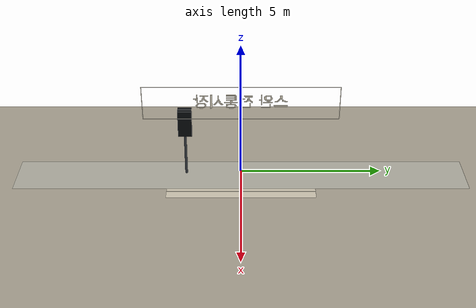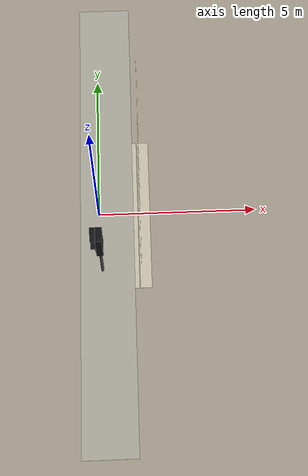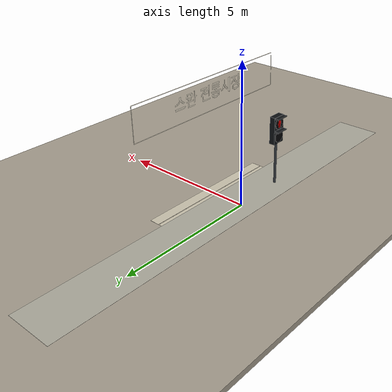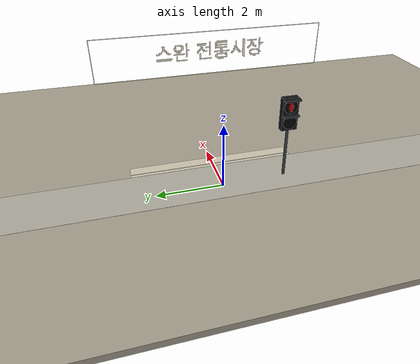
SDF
<sdf version="1.10">
 <world name="swan_town">
  <model name="ground_plane">
   <pose>-14 30 -0.025 0 0 0</pose>
   <static>true</static>
   <link name="link">
    <collision name="collision">
     <geometry><plane><normal>0 0 1</normal><size>100 100</size></plane></geometry>
    </collision>
    <visual name="visual">
     <geometry><plane><normal>0 0 1</normal><size>100 100</size></plane></geometry>
     <material><ambient>0.3 0.5 0.2 1</ambient><diffuse>0.3 0.5 0.2 1</diffuse></material>
    </visual>
   </link>
  </model>
  <model name="ground">
   <static>true</static>
   <pose>15 0 -0.1 0 0 0</pose>
   <link name="body">
    <collision name="box_collision"><geometry><box><size>46 24 0.2</size></box></geometry></collision>
    <visual name="box_visual">
     <geometry><box><size>46 24 0.2</size></box></geometry>
     <material><ambient>0.64 0.61 0.55 1</ambient><diffuse>0.64 0.61 0.55 1</diffuse></material>
    </visual>
   </link>
  </model>
  <model name="market_paving_4">
   <static>true</static>
   <pose>0.25 0 0.002 0 0 0</pose>
   <link name="body">
    <visual name="box_visual">
     <geometry><box><size>0.75 5.2 0.004</size></box></geometry>
     <material><ambient>0.79 0.76 0.68 1</ambient><diffuse>0.79 0.76 0.68 1</diffuse></material>
    </visual>
   </link>
  </model>
  <model name="paving_joint_4">
   <static>true</static>
   <pose>0.25 0 0.0045 0 0 0</pose>
   <link name="body">
    <visual name="box_visual">
     <geometry><box><size>0.025 5.2 0.001</size></box></geometry>
     <material><ambient>0.67 0.64 0.57 1</ambient><diffuse>0.67 0.64 0.57 1</diffuse></material>
    </visual>
   </link>
  </model>
  <model name="market_paving_5">
   <static>true</static>
   <pose>0.75 0 0.002 0 0 0</pose>
   <link name="body">
    <visual name="box_visual">
     <geometry><box><size>0.75 5.2 0.004</size></box></geometry>
     <material><ambient>0.79 0.76 0.68 1</ambient><diffuse>0.79 0.76 0.68 1</diffuse></material>
    </visual>
   </link>
  </model>
  <model name="market_paving_6">
   <static>true</static>
   <pose>1.25 0 0.002 0 0 0</pose>
   <link name="body">
    <visual name="box_visual">
     <geometry><box><size>0.75 5.2 0.004</size></box></geometry>
     <material><ambient>0.79 0.76 0.68 1</ambient><diffuse>0.79 0.76 0.68 1</diffuse></material>
    </visual>
   </link>
  </model>
  <model name="paving_joint_6">
   <static>true</static>
   <pose>1.25 0 0.0045 0 0 0</pose>
   <link name="body">
    <visual name="box_visual">
     <geometry><box><size>0.025 5.2 0.001</size></box></geometry>
     <material><ambient>0.67 0.64 0.57 1</ambient><diffuse>0.67 0.64 0.57 1</diffuse></material>
    </visual>
   </link>
  </model>
  <model name="entrance_sidewalk_market">
   <static>true</static>
   <pose>0.25 0 0.014 0 0 0</pose>
   <link name="body">
    <visual name="box_visual">
     <geometry><box><size>1.7 16 0.004</size></box></geometry>
     <material><ambient>0.67 0.66 0.61 1</ambient><diffuse>0.67 0.66 0.61 1</diffuse></material>
    </visual>
   </link>
  </model>
  <model name="ped_signal_east_housing">
   <static>true</static>
   <pose>0.1 -1.95 0 0 0 -1.5708</pose>
   <link name="body">
    <collision name="pole_collision">
     <pose>0 0 1.025 0 0 0</pose>
     <geometry><cylinder><radius>0.045</radius><length>2.05</length></cylinder></geometry>
    </collision>
    <visual name="pole_visual">
     <pose>0 0 1.025 0 0 0</pose>
     <geometry><cylinder><radius>0.045</radius><length>2.05</length></cylinder></geometry>
     <material><ambient>0.23 0.25 0.27 1</ambient><diffuse>0.23 0.25 0.27 1</diffuse></material>
    </visual>
    <collision name="housing_collision">
     <pose>0 0 2.08 0 0 0</pose>
     <geometry><box><size>0.48 0.2 0.99</size></box></geometry>
    </collision>
    <visual name="housing_visual">
     <pose>0 0 2.08 0 0 0</pose>
     <geometry><box><size>0.48 0.2 0.99</size></box></geometry>
     <material><ambient>0.055 0.065 0.075 1</ambient><diffuse>0.055 0.065 0.075 1</diffuse></material>
    </visual>
    <visual name="red_lens_visual">
     <pose>0 -0.113 2.32 1.5708 0 0</pose>
     <geometry><cylinder><radius>0.205</radius><length>0.022</length></cylinder></geometry>
     <material><ambient>0.013 0.018 0.022 1</ambient><diffuse>0.013 0.018 0.022 1</diffuse></material>
    </visual>
    <visual name="red_hood_visual">
     <pose>0 -0.13 2.545 0 0 0</pose>
     <geometry><box><size>0.47 0.25 0.04</size></box></geometry>
     <material><ambient>0.07 0.08 0.09 1</ambient><diffuse>0.07 0.08 0.09 1</diffuse></material>
    </visual>
    <visual name="green_lens_visual">
     <pose>0 -0.113 1.84 1.5708 0 0</pose>
     <geometry><cylinder><radius>0.205</radius><length>0.022</length></cylinder></geometry>
     <material><ambient>0.013 0.018 0.022 1</ambient><diffuse>0.013 0.018 0.022 1</diffuse></material>
    </visual>
    <visual name="green_hood_visual">
     <pose>0 -0.13 2.065 0 0 0</pose>
     <geometry><box><size>0.47 0.25 0.04</size></box></geometry>
     <material><ambient>0.07 0.08 0.09 1</ambient><diffuse>0.07 0.08 0.09 1</diffuse></material>
    </visual>
   </link>
  </model>
  <model name="ped_signal_east_red">
   <static>true</static>
   <pose>0.1 -1.95 0 0 0 -1.5708</pose>
   <link name="body">
    <visual name="head_visual">
     <pose>-0.012 -0.132 2.457 1.5708 0 0</pose>
     <geometry><cylinder><radius>0.035</radius><length>0.01</length></cylinder></geometry>
     <material>
      <ambient>1 0.025 0.015 1</ambient>
      <diffuse>1 0.025 0.015 1</diffuse>
      <emissive>1 0.025 0.015 1</emissive>
     </material>
     <cast_shadows>false</cast_shadows>
    </visual>
    <visual name="stroke_0_visual">
     <pose>0 -0.132 2.36 0 3.1416 0</pose>
     <geometry><box><size>0.064 0.01 0.122</size></box></geometry>
     <material>
      <ambient>1 0.025 0.015 1</ambient>
      <diffuse>1 0.025 0.015 1</diffuse>
      <emissive>1 0.025 0.015 1</emissive>
     </material>
     <cast_shadows>false</cast_shadows>
    </visual>
    <visual name="stroke_1_visual">
     <pose>-0.056 -0.132 2.338 0 -2.9551 0</pose>
     <geometry><box><size>0.026 0.01 0.11987</size></box></geometry>
     <material>
      <ambient>1 0.025 0.015 1</ambient>
      <diffuse>1 0.025 0.015 1</diffuse>
      <emissive>1 0.025 0.015 1</emissive>
     </material>
     <cast_shadows>false</cast_shadows>
    </visual>
    <visual name="stroke_2_visual">
     <pose>0.056 -0.132 2.338 0 2.9551 0</pose>
     <geometry><box><size>0.026 0.01 0.11987</size></box></geometry>
     <material>
      <ambient>1 0.025 0.015 1</ambient>
      <diffuse>1 0.025 0.015 1</diffuse>
      <emissive>1 0.025 0.015 1</emissive>
     </material>
     <cast_shadows>false</cast_shadows>
    </visual>
    <visual name="stroke_3_visual">
     <pose>-0.0255 -0.132 2.2425 0 -3.075 0</pose>
     <geometry><box><size>0.032 0.01 0.1473</size></box></geometry>
     <material>
      <ambient>1 0.025 0.015 1</ambient>
      <diffuse>1 0.025 0.015 1</diffuse>
      <emissive>1 0.025 0.015 1</emissive>
     </material>
     <cast_shadows>false</cast_shadows>
    </visual>
    <visual name="stroke_4_visual">
     <pose>0.0255 -0.132 2.2425 0 3.075 0</pose>
     <geometry><box><size>0.032 0.01 0.1473</size></box></geometry>
     <material>
      <ambient>1 0.025 0.015 1</ambient>
      <diffuse>1 0.025 0.015 1</diffuse>
      <emissive>1 0.025 0.015 1</emissive>
     </material>
     <cast_shadows>false</cast_shadows>
    </visual>
   </link>
  </model>
  <model name="ped_signal_east_green">
   <static>true</static>
   <pose>0.1 -1.95 -5 0 0 -1.5708</pose>
   <link name="body">
    <visual name="head_visual">
     <pose>0.025 -0.132 1.977 1.5708 0 0</pose>
     <geometry><cylinder><radius>0.035</radius><length>0.01</length></cylinder></geometry>
     <material>
      <ambient>0.025 1 0.18 1</ambient>
      <diffuse>0.025 1 0.18 1</diffuse>
      <emissive>0.025 1 0.18 1</emissive>
     </material>
     <cast_shadows>false</cast_shadows>
    </visual>
    <visual name="stroke_0_visual">
     <pose>-0.004 -0.132 1.876 0 -2.8633 0</pose>
     <geometry><box><size>0.054 0.01 0.12848</size></box></geometry>
     <material>
      <ambient>0.025 1 0.18 1</ambient>
      <diffuse>0.025 1 0.18 1</diffuse>
      <emissive>0.025 1 0.18 1</emissive>
     </material>
     <cast_shadows>false</cast_shadows>
    </visual>
    <visual name="stroke_1_visual">
     <pose>-0.032 -0.132 1.883 0 -2.234 0</pose>
     <geometry><box><size>0.026 0.01 0.093216</size></box></geometry>
     <material>
      <ambient>0.025 1 0.18 1</ambient>
      <diffuse>0.025 1 0.18 1</diffuse>
      <emissive>0.025 1 0.18 1</emissive>
     </material>
     <cast_shadows>false</cast_shadows>
    </visual>
    <visual name="stroke_2_visual">
     <pose>-0.088 -0.132 1.8665 0 -1.2304 0</pose>
     <geometry><box><size>0.026 0.01 0.062922</size></box></geometry>
     <material>
      <ambient>0.025 1 0.18 1</ambient>
      <diffuse>0.025 1 0.18 1</diffuse>
      <emissive>0.025 1 0.18 1</emissive>
     </material>
     <cast_shadows>false</cast_shadows>
    </visual>
    <visual name="stroke_3_visual">
     <pose>0.0475 -0.132 1.872 0 2.3652 0</pose>
     <geometry><box><size>0.026 0.01 0.090492</size></box></geometry>
     <material>
      <ambient>0.025 1 0.18 1</ambient>
      <diffuse>0.025 1 0.18 1</diffuse>
      <emissive>0.025 1 0.18 1</emissive>
     </material>
     <cast_shadows>false</cast_shadows>
    </visual>
    <visual name="stroke_4_visual">
     <pose>0.097 -0.132 1.8485 0 1.369 0</pose>
     <geometry><box><size>0.026 0.01 0.056911</size></box></geometry>
     <material>
      <ambient>0.025 1 0.18 1</ambient>
      <diffuse>0.025 1 0.18 1</diffuse>
      <emissive>0.025 1 0.18 1</emissive>
     </material>
     <cast_shadows>false</cast_shadows>
    </visual>
    <visual name="stroke_5_visual">
     <pose>-0.052 -0.132 1.76 0 -2.6651 0</pose>
     <geometry><box><size>0.031 0.01 0.15154</size></box></geometry>
     <material>
      <ambient>0.025 1 0.18 1</ambient>
      <diffuse>0.025 1 0.18 1</diffuse>
      <emissive>0.025 1 0.18 1</emissive>
     </material>
     <cast_shadows>false</cast_shadows>
    </visual>
    <visual name="stroke_6_visual">
     <pose>0.0195 -0.132 1.7905 0 2.1749 0</pose>
     <geometry><box><size>0.031 0.01 0.098267</size></box></geometry>
     <material>
      <ambient>0.025 1 0.18 1</ambient>
      <diffuse>0.025 1 0.18 1</diffuse>
      <emissive>0.025 1 0.18 1</emissive>
     </material>
     <cast_shadows>false</cast_shadows>
    </visual>
    <visual name="stroke_7_visual">
     <pose>0.0705 -0.132 1.7295 0 2.74 0</pose>
     <geometry><box><size>0.031 0.01 0.09131</size></box></geometry>
     <material>
      <ambient>0.025 1 0.18 1</ambient>
      <diffuse>0.025 1 0.18 1</diffuse>
      <emissive>0.025 1 0.18 1</emissive>
     </material>
     <cast_shadows>false</cast_shadows>
    </visual>
   </link>
  </model>
  <model name="sign_entrance">
   <static>true</static>
   <pose>1.365 0 3.6 0 0 -1.5708</pose>
   <link name="body">
    <visual name="top_visual">
     <pose>0 -0.003 0.58781 0 0 0</pose>
     <geometry><box><size>6.4416 0.003 0.0198</size></box></geometry>
     <material><ambient>1 0.961 0.875 1</ambient><diffuse>1 0.961 0.875 1</diffuse></material>
    </visual>
    <visual name="bottom_visual">
     <pose>0 -0.003 -0.58781 0 0 0</pose>
     <geometry><box><size>6.4416 0.003 0.0198</size></box></geometry>
     <material><ambient>1 0.961 0.875 1</ambient><diffuse>1 0.961 0.875 1</diffuse></material>
    </visual>
    <visual name="left_visual">
     <pose>-3.2208 -0.003 0 0 0 0</pose>
     <geometry><box><size>0.0198 0.003 1.1756</size></box></geometry>
     <material><ambient>1 0.961 0.875 1</ambient><diffuse>1 0.961 0.875 1</diffuse></material>
    </visual>
    <visual name="right_visual">
     <pose>3.2208 -0.003 0 0 0 0</pose>
     <geometry><box><size>0.0198 0.003 1.1756</size></box></geometry>
     <material><ambient>1 0.961 0.875 1</ambient><diffuse>1 0.961 0.875 1</diffuse></material>
    </visual>
    <visual name="ink_0_visual">
     <pose>0.32656 -0.003 0.29219 0 0 0</pose>
     <geometry><box><size>0.30938 0.003 0.034375</size></box></geometry>
     <material><ambient>1 0.961 0.875 1</ambient><diffuse>1 0.961 0.875 1</diffuse></material>
    </visual>
    <visual name="ink_1_visual">
     <pose>-0.89375 -0.003 0.25781 0 0 0</pose>
     <geometry><box><size>0.20625 0.003 0.034375</size></box></geometry>
     <material><ambient>1 0.961 0.875 1</ambient><diffuse>1 0.961 0.875 1</diffuse></material>
    </visual>
    <visual name="ink_2_visual">
     <pose>-0.24062 -0.003 0.25781 0 0 0</pose>
     <geometry><box><size>0.275 0.003 0.034375</size></box></geometry>
     <material><ambient>1 0.961 0.875 1</ambient><diffuse>1 0.961 0.875 1</diffuse></material>
    </visual>
    <visual name="ink_3_visual">
     <pose>0.30937 -0.003 0.25781 0 0 0</pose>
     <geometry><box><size>0.34375 0.003 0.034375</size></box></geometry>
     <material><ambient>1 0.961 0.875 1</ambient><diffuse>1 0.961 0.875 1</diffuse></material>
    </visual>
    <visual name="ink_4_visual">
     <pose>1.2031 -0.003 0.25781 0 0 0</pose>
     <geometry><box><size>0.275 0.003 0.034375</size></box></geometry>
     <material><ambient>1 0.961 0.875 1</ambient><diffuse>1 0.961 0.875 1</diffuse></material>
    </visual>
    <visual name="ink_5_visual">
     <pose>-0.97969 -0.003 0.22344 0 0 0</pose>
     <geometry><box><size>0.034375 0.003 0.034375</size></box></geometry>
     <material><ambient>1 0.961 0.875 1</ambient><diffuse>1 0.961 0.875 1</diffuse></material>
    </visual>
    <visual name="ink_6_visual">
     <pose>-0.25781 -0.003 0.22344 0 0 0</pose>
     <geometry><box><size>0.24062 0.003 0.034375</size></box></geometry>
     <material><ambient>1 0.961 0.875 1</ambient><diffuse>1 0.961 0.875 1</diffuse></material>
    </visual>
    <visual name="ink_7_visual">
     <pose>0.17187 -0.003 0.22344 0 0 0</pose>
     <geometry><box><size>0.06875 0.003 0.034375</size></box></geometry>
     <material><ambient>1 0.961 0.875 1</ambient><diffuse>1 0.961 0.875 1</diffuse></material>
    </visual>
    <visual name="ink_8_visual">
     <pose>-1.3063 -0.003 0.22344 0 0 0</pose>
     <geometry><box><size>0.06875 0.003 0.10312</size></box></geometry>
     <material><ambient>1 0.961 0.875 1</ambient><diffuse>1 0.961 0.875 1</diffuse></material>
    </visual>
    <visual name="ink_9_visual">
     <pose>-0.25781 -0.003 0.18906 0 0 0</pose>
     <geometry><box><size>0.034375 0.003 0.034375</size></box></geometry>
     <material><ambient>1 0.961 0.875 1</ambient><diffuse>1 0.961 0.875 1</diffuse></material>
    </visual>
    <visual name="ink_10_visual">
     <pose>-0.017188 -0.003 0.24062 0 0 0</pose>
     <geometry><box><size>0.034375 0.003 0.1375</size></box></geometry>
     <material><ambient>1 0.961 0.875 1</ambient><diffuse>1 0.961 0.875 1</diffuse></material>
    </visual>
    <visual name="ink_11_visual">
     <pose>0.30937 -0.003 0.18906 0 0 0</pose>
     <geometry><box><size>0.34375 0.003 0.034375</size></box></geometry>
     <material><ambient>1 0.961 0.875 1</ambient><diffuse>1 0.961 0.875 1</diffuse></material>
    </visual>
    <visual name="ink_12_visual">
     <pose>1.2031 -0.003 0.20625 0 0 0</pose>
     <geometry><box><size>0.06875 0.003 0.06875</size></box></geometry>
     <material><ambient>1 0.961 0.875 1</ambient><diffuse>1 0.961 0.875 1</diffuse></material>
    </visual>
    <visual name="ink_13_visual">
     <pose>1.4266 -0.003 0.24062 0 0 0</pose>
     <geometry><box><size>0.034375 0.003 0.1375</size></box></geometry>
     <material><ambient>1 0.961 0.875 1</ambient><diffuse>1 0.961 0.875 1</diffuse></material>
    </visual>
    <visual name="ink_14_visual">
     <pose>-1.2891 -0.003 0.15469 0 0 0</pose>
     <geometry><box><size>0.10312 0.003 0.034375</size></box></geometry>
     <material><ambient>1 0.961 0.875 1</ambient><diffuse>1 0.961 0.875 1</diffuse></material>
    </visual>
    <visual name="ink_15_visual">
     <pose>-0.99688 -0.003 0.17187 0 0 0</pose>
     <geometry><box><size>0.06875 0.003 0.06875</size></box></geometry>
     <material><ambient>1 0.961 0.875 1</ambient><diffuse>1 0.961 0.875 1</diffuse></material>
    </visual>
    <visual name="ink_16_visual">
     <pose>-0.79063 -0.003 0.18906 0 0 0</pose>
     <geometry><box><size>0.06875 0.003 0.10312</size></box></geometry>
     <material><ambient>1 0.961 0.875 1</ambient><diffuse>1 0.961 0.875 1</diffuse></material>
    </visual>
    <visual name="ink_17_visual">
     <pose>-0.67031 -0.003 0.22344 0 0 0</pose>
     <geometry><box><size>0.034375 0.003 0.17187</size></box></geometry>
     <material><ambient>1 0.961 0.875 1</ambient><diffuse>1 0.961 0.875 1</diffuse></material>
    </visual>
    <visual name="ink_18_visual">
     <pose>-0.24062 -0.003 0.15469 0 0 0</pose>
     <geometry><box><size>0.06875 0.003 0.034375</size></box></geometry>
     <material><ambient>1 0.961 0.875 1</ambient><diffuse>1 0.961 0.875 1</diffuse></material>
    </visual>
    <visual name="ink_19_visual">
     <pose>-0.06875 -0.003 0.15469 0 0 0</pose>
     <geometry><box><size>0.1375 0.003 0.034375</size></box></geometry>
     <material><ambient>1 0.961 0.875 1</ambient><diffuse>1 0.961 0.875 1</diffuse></material>
    </visual>
    <visual name="ink_20_visual">
     <pose>0.17187 -0.003 0.15469 0 0 0</pose>
     <geometry><box><size>0.06875 0.003 0.034375</size></box></geometry>
     <material><ambient>1 0.961 0.875 1</ambient><diffuse>1 0.961 0.875 1</diffuse></material>
    </visual>
    <visual name="ink_21_visual">
     <pose>0.73906 -0.003 0.20625 0 0 0</pose>
     <geometry><box><size>0.034375 0.003 0.1375</size></box></geometry>
     <material><ambient>1 0.961 0.875 1</ambient><diffuse>1 0.961 0.875 1</diffuse></material>
    </visual>
    <visual name="ink_22_visual">
     <pose>1.2203 -0.003 0.15469 0 0 0</pose>
     <geometry><box><size>0.10312 0.003 0.034375</size></box></geometry>
     <material><ambient>1 0.961 0.875 1</ambient><diffuse>1 0.961 0.875 1</diffuse></material>
    </visual>
    <visual name="ink_23_visual">
     <pose>1.4781 -0.003 0.15469 0 0 0</pose>
     <geometry><box><size>0.1375 0.003 0.034375</size></box></geometry>
     <material><ambient>1 0.961 0.875 1</ambient><diffuse>1 0.961 0.875 1</diffuse></material>
    </visual>
    <visual name="ink_24_visual">
     <pose>-1.3578 -0.003 0.12031 0 0 0</pose>
     <geometry><box><size>0.034375 0.003 0.034375</size></box></geometry>
     <material><ambient>1 0.961 0.875 1</ambient><diffuse>1 0.961 0.875 1</diffuse></material>
    </visual>
    <visual name="ink_25_visual">
     <pose>-1.2375 -0.003 0.12031 0 0 0</pose>
     <geometry><box><size>0.06875 0.003 0.034375</size></box></geometry>
     <material><ambient>1 0.961 0.875 1</ambient><diffuse>1 0.961 0.875 1</diffuse></material>
    </visual>
    <visual name="ink_26_visual">
     <pose>-0.89375 -0.003 0.12031 0 0 0</pose>
     <geometry><box><size>0.20625 0.003 0.034375</size></box></geometry>
     <material><ambient>1 0.961 0.875 1</ambient><diffuse>1 0.961 0.875 1</diffuse></material>
    </visual>
    <visual name="ink_27_visual">
     <pose>-0.63594 -0.003 0.12031 0 0 0</pose>
     <geometry><box><size>0.10312 0.003 0.034375</size></box></geometry>
     <material><ambient>1 0.961 0.875 1</ambient><diffuse>1 0.961 0.875 1</diffuse></material>
    </visual>
    <visual name="ink_28_visual">
     <pose>-0.25781 -0.003 0.12031 0 0 0</pose>
     <geometry><box><size>0.10312 0.003 0.034375</size></box></geometry>
     <material><ambient>1 0.961 0.875 1</ambient><diffuse>1 0.961 0.875 1</diffuse></material>
    </visual>
    <visual name="ink_29_visual">
     <pose>0.30937 -0.003 0.12031 0 0 0</pose>
     <geometry><box><size>0.34375 0.003 0.034375</size></box></geometry>
     <material><ambient>1 0.961 0.875 1</ambient><diffuse>1 0.961 0.875 1</diffuse></material>
    </visual>
    <visual name="ink_30_visual">
     <pose>0.72187 -0.003 0.12031 0 0 0</pose>
     <geometry><box><size>0.06875 0.003 0.034375</size></box></geometry>
     <material><ambient>1 0.961 0.875 1</ambient><diffuse>1 0.961 0.875 1</diffuse></material>
    </visual>
    <visual name="ink_31_visual">
     <pose>1.1688 -0.003 0.12031 0 0 0</pose>
     <geometry><box><size>0.06875 0.003 0.034375</size></box></geometry>
     <material><ambient>1 0.961 0.875 1</ambient><diffuse>1 0.961 0.875 1</diffuse></material>
    </visual>
    <visual name="ink_32_visual">
     <pose>1.2547 -0.003 0.12031 0 0 0</pose>
     <geometry><box><size>0.034375 0.003 0.034375</size></box></geometry>
     <material><ambient>1 0.961 0.875 1</ambient><diffuse>1 0.961 0.875 1</diffuse></material>
    </visual>
    <visual name="ink_33_visual">
     <pose>1.4437 -0.003 0.12031 0 0 0</pose>
     <geometry><box><size>0.06875 0.003 0.034375</size></box></geometry>
     <material><ambient>1 0.961 0.875 1</ambient><diffuse>1 0.961 0.875 1</diffuse></material>
    </visual>
    <visual name="ink_34_visual">
     <pose>-1.3922 -0.003 0.085937 0 0 0</pose>
     <geometry><box><size>0.10312 0.003 0.034375</size></box></geometry>
     <material><ambient>1 0.961 0.875 1</ambient><diffuse>1 0.961 0.875 1</diffuse></material>
    </visual>
    <visual name="ink_35_visual">
     <pose>-1.2031 -0.003 0.085937 0 0 0</pose>
     <geometry><box><size>0.06875 0.003 0.034375</size></box></geometry>
     <material><ambient>1 0.961 0.875 1</ambient><diffuse>1 0.961 0.875 1</diffuse></material>
    </visual>
    <visual name="ink_36_visual">
     <pose>-0.89375 -0.003 0.085937 0 0 0</pose>
     <geometry><box><size>0.1375 0.003 0.034375</size></box></geometry>
     <material><ambient>1 0.961 0.875 1</ambient><diffuse>1 0.961 0.875 1</diffuse></material>
    </visual>
    <visual name="ink_37_visual">
     <pose>-0.30937 -0.003 0.085937 0 0 0</pose>
     <geometry><box><size>0.06875 0.003 0.034375</size></box></geometry>
     <material><ambient>1 0.961 0.875 1</ambient><diffuse>1 0.961 0.875 1</diffuse></material>
    </visual>
    <visual name="ink_38_visual">
     <pose>-0.20625 -0.003 0.085937 0 0 0</pose>
     <geometry><box><size>0.06875 0.003 0.034375</size></box></geometry>
     <material><ambient>1 0.961 0.875 1</ambient><diffuse>1 0.961 0.875 1</diffuse></material>
    </visual>
    <visual name="ink_39_visual">
     <pose>0.73906 -0.003 0.085937 0 0 0</pose>
     <geometry><box><size>0.10312 0.003 0.034375</size></box></geometry>
     <material><ambient>1 0.961 0.875 1</ambient><diffuse>1 0.961 0.875 1</diffuse></material>
    </visual>
    <visual name="ink_40_visual">
     <pose>1.1344 -0.003 0.085937 0 0 0</pose>
     <geometry><box><size>0.06875 0.003 0.034375</size></box></geometry>
     <material><ambient>1 0.961 0.875 1</ambient><diffuse>1 0.961 0.875 1</diffuse></material>
    </visual>
    <visual name="ink_41_visual">
     <pose>1.2891 -0.003 0.085937 0 0 0</pose>
     <geometry><box><size>0.10312 0.003 0.034375</size></box></geometry>
     <material><ambient>1 0.961 0.875 1</ambient><diffuse>1 0.961 0.875 1</diffuse></material>
    </visual>
    <visual name="ink_42_visual">
     <pose>-1.4609 -0.003 0.051563 0 0 0</pose>
     <geometry><box><size>0.10312 0.003 0.034375</size></box></geometry>
     <material><ambient>1 0.961 0.875 1</ambient><diffuse>1 0.961 0.875 1</diffuse></material>
    </visual>
    <visual name="ink_43_visual">
     <pose>-1.1516 -0.003 0.051563 0 0 0</pose>
     <geometry><box><size>0.10312 0.003 0.034375</size></box></geometry>
     <material><ambient>1 0.961 0.875 1</ambient><diffuse>1 0.961 0.875 1</diffuse></material>
    </visual>
    <visual name="ink_44_visual">
     <pose>-0.89375 -0.003 0.051563 0 0 0</pose>
     <geometry><box><size>0.06875 0.003 0.034375</size></box></geometry>
     <material><ambient>1 0.961 0.875 1</ambient><diffuse>1 0.961 0.875 1</diffuse></material>
    </visual>
    <visual name="ink_45_visual">
     <pose>-0.34375 -0.003 0.051563 0 0 0</pose>
     <geometry><box><size>0.06875 0.003 0.034375</size></box></geometry>
     <material><ambient>1 0.961 0.875 1</ambient><diffuse>1 0.961 0.875 1</diffuse></material>
    </visual>
    <visual name="ink_46_visual">
     <pose>-0.15469 -0.003 0.051563 0 0 0</pose>
     <geometry><box><size>0.10312 0.003 0.034375</size></box></geometry>
     <material><ambient>1 0.961 0.875 1</ambient><diffuse>1 0.961 0.875 1</diffuse></material>
    </visual>
    <visual name="ink_47_visual">
     <pose>0.30937 -0.003 0.06875 0 0 0</pose>
     <geometry><box><size>0.06875 0.003 0.06875</size></box></geometry>
     <material><ambient>1 0.961 0.875 1</ambient><diffuse>1 0.961 0.875 1</diffuse></material>
    </visual>
    <visual name="ink_48_visual">
     <pose>0.77344 -0.003 0.051563 0 0 0</pose>
     <geometry><box><size>0.034375 0.003 0.034375</size></box></geometry>
     <material><ambient>1 0.961 0.875 1</ambient><diffuse>1 0.961 0.875 1</diffuse></material>
    </visual>
    <visual name="ink_49_visual">
     <pose>1.1 -0.003 0.051563 0 0 0</pose>
     <geometry><box><size>0.06875 0.003 0.034375</size></box></geometry>
     <material><ambient>1 0.961 0.875 1</ambient><diffuse>1 0.961 0.875 1</diffuse></material>
    </visual>
    <visual name="ink_50_visual">
     <pose>1.3234 -0.003 0.051563 0 0 0</pose>
     <geometry><box><size>0.034375 0.003 0.034375</size></box></geometry>
     <material><ambient>1 0.961 0.875 1</ambient><diffuse>1 0.961 0.875 1</diffuse></material>
    </visual>
    <visual name="ink_51_visual">
     <pose>-0.87656 -0.003 0.017188 0 0 0</pose>
     <geometry><box><size>0.30938 0.003 0.034375</size></box></geometry>
     <material><ambient>1 0.961 0.875 1</ambient><diffuse>1 0.961 0.875 1</diffuse></material>
    </visual>
    <visual name="ink_52_visual">
     <pose>-0.36094 -0.003 0.017188 0 0 0</pose>
     <geometry><box><size>0.034375 0.003 0.034375</size></box></geometry>
     <material><ambient>1 0.961 0.875 1</ambient><diffuse>1 0.961 0.875 1</diffuse></material>
    </visual>
    <visual name="ink_53_visual">
     <pose>0.32656 -0.003 0.017188 0 0 0</pose>
     <geometry><box><size>0.44687 0.003 0.034375</size></box></geometry>
     <material><ambient>1 0.961 0.875 1</ambient><diffuse>1 0.961 0.875 1</diffuse></material>
    </visual>
    <visual name="ink_54_visual">
     <pose>0.6875 -0.003 0.034375 0 0 0</pose>
     <geometry><box><size>0.06875 0.003 0.06875</size></box></geometry>
     <material><ambient>1 0.961 0.875 1</ambient><diffuse>1 0.961 0.875 1</diffuse></material>
    </visual>
    <visual name="ink_55_visual">
     <pose>0.79062 -0.003 0.017188 0 0 0</pose>
     <geometry><box><size>0.06875 0.003 0.034375</size></box></geometry>
     <material><ambient>1 0.961 0.875 1</ambient><diffuse>1 0.961 0.875 1</diffuse></material>
    </visual>
    <visual name="ink_56_visual">
     <pose>1.4266 -0.003 0.051563 0 0 0</pose>
     <geometry><box><size>0.034375 0.003 0.10312</size></box></geometry>
     <material><ambient>1 0.961 0.875 1</ambient><diffuse>1 0.961 0.875 1</diffuse></material>
    </visual>
    <visual name="ink_57_visual">
     <pose>0.32656 -0.003 -0.017187 0 0 0</pose>
     <geometry><box><size>0.034375 0.003 0.034375</size></box></geometry>
     <material><ambient>1 0.961 0.875 1</ambient><diffuse>1 0.961 0.875 1</diffuse></material>
    </visual>
    <visual name="ink_58_visual">
     <pose>0.65313 -0.003 -0.017187 0 0 0</pose>
     <geometry><box><size>0.06875 0.003 0.034375</size></box></geometry>
     <material><ambient>1 0.961 0.875 1</ambient><diffuse>1 0.961 0.875 1</diffuse></material>
    </visual>
    <visual name="ink_59_visual">
     <pose>0.825 -0.003 -0.017187 0 0 0</pose>
     <geometry><box><size>0.06875 0.003 0.034375</size></box></geometry>
     <material><ambient>1 0.961 0.875 1</ambient><diffuse>1 0.961 0.875 1</diffuse></material>
    </visual>
    <visual name="ink_60_visual">
     <pose>1.2891 -0.003 -0.017187 0 0 0</pose>
     <geometry><box><size>0.24062 0.003 0.034375</size></box></geometry>
     <material><ambient>1 0.961 0.875 1</ambient><diffuse>1 0.961 0.875 1</diffuse></material>
    </visual>
    <visual name="ink_61_visual">
     <pose>-0.67031 -0.003 0.017188 0 0 0</pose>
     <geometry><box><size>0.034375 0.003 0.17187</size></box></geometry>
     <material><ambient>1 0.961 0.875 1</ambient><diffuse>1 0.961 0.875 1</diffuse></material>
    </visual>
    <visual name="ink_62_visual">
     <pose>-0.017188 -0.003 0.034375 0 0 0</pose>
     <geometry><box><size>0.034375 0.003 0.20625</size></box></geometry>
     <material><ambient>1 0.961 0.875 1</ambient><diffuse>1 0.961 0.875 1</diffuse></material>
    </visual>
    <visual name="ink_63_visual">
     <pose>0.32656 -0.003 -0.051562 0 0 0</pose>
     <geometry><box><size>0.30938 0.003 0.034375</size></box></geometry>
     <material><ambient>1 0.961 0.875 1</ambient><diffuse>1 0.961 0.875 1</diffuse></material>
    </visual>
    <visual name="ink_64_visual">
     <pose>0.61875 -0.003 -0.051562 0 0 0</pose>
     <geometry><box><size>0.06875 0.003 0.034375</size></box></geometry>
     <material><ambient>1 0.961 0.875 1</ambient><diffuse>1 0.961 0.875 1</diffuse></material>
    </visual>
    <visual name="ink_65_visual">
     <pose>0.85938 -0.003 -0.051562 0 0 0</pose>
     <geometry><box><size>0.06875 0.003 0.034375</size></box></geometry>
     <material><ambient>1 0.961 0.875 1</ambient><diffuse>1 0.961 0.875 1</diffuse></material>
    </visual>
    <visual name="ink_66_visual">
     <pose>1.1688 -0.003 -0.051562 0 0 0</pose>
     <geometry><box><size>0.06875 0.003 0.034375</size></box></geometry>
     <material><ambient>1 0.961 0.875 1</ambient><diffuse>1 0.961 0.875 1</diffuse></material>
    </visual>
    <visual name="ink_67_visual">
     <pose>1.4094 -0.003 -0.051562 0 0 0</pose>
     <geometry><box><size>0.06875 0.003 0.034375</size></box></geometry>
     <material><ambient>1 0.961 0.875 1</ambient><diffuse>1 0.961 0.875 1</diffuse></material>
    </visual>
    <visual name="ink_68_visual">
     <pose>-1.2891 -0.003 -0.085937 0 0 0</pose>
     <geometry><box><size>0.44687 0.003 0.034375</size></box></geometry>
     <material><ambient>1 0.961 0.875 1</ambient><diffuse>1 0.961 0.875 1</diffuse></material>
    </visual>
    <visual name="ink_69_visual">
     <pose>0.44688 -0.003 -0.085937 0 0 0</pose>
     <geometry><box><size>0.06875 0.003 0.034375</size></box></geometry>
     <material><ambient>1 0.961 0.875 1</ambient><diffuse>1 0.961 0.875 1</diffuse></material>
    </visual>
    <visual name="ink_70_visual">
     <pose>1.1516 -0.003 -0.085937 0 0 0</pose>
     <geometry><box><size>0.034375 0.003 0.034375</size></box></geometry>
     <material><ambient>1 0.961 0.875 1</ambient><diffuse>1 0.961 0.875 1</diffuse></material>
    </visual>
    <visual name="ink_71_visual">
     <pose>1.4437 -0.003 -0.085937 0 0 0</pose>
     <geometry><box><size>0.06875 0.003 0.034375</size></box></geometry>
     <material><ambient>1 0.961 0.875 1</ambient><diffuse>1 0.961 0.875 1</diffuse></material>
    </visual>
    <visual name="ink_72_visual">
     <pose>-1.3063 -0.003 -0.12031 0 0 0</pose>
     <geometry><box><size>0.4125 0.003 0.034375</size></box></geometry>
     <material><ambient>1 0.961 0.875 1</ambient><diffuse>1 0.961 0.875 1</diffuse></material>
    </visual>
    <visual name="ink_73_visual">
     <pose>-0.94531 -0.003 -0.085937 0 0 0</pose>
     <geometry><box><size>0.034375 0.003 0.10312</size></box></geometry>
     <material><ambient>1 0.961 0.875 1</ambient><diffuse>1 0.961 0.875 1</diffuse></material>
    </visual>
    <visual name="ink_74_visual">
     <pose>-0.29219 -0.003 -0.06875 0 0 0</pose>
     <geometry><box><size>0.034375 0.003 0.1375</size></box></geometry>
     <material><ambient>1 0.961 0.875 1</ambient><diffuse>1 0.961 0.875 1</diffuse></material>
    </visual>
    <visual name="ink_75_visual">
     <pose>0.17187 -0.003 -0.10313 0 0 0</pose>
     <geometry><box><size>0.06875 0.003 0.06875</size></box></geometry>
     <material><ambient>1 0.961 0.875 1</ambient><diffuse>1 0.961 0.875 1</diffuse></material>
    </visual>
    <visual name="ink_76_visual">
     <pose>0.46406 -0.003 -0.12031 0 0 0</pose>
     <geometry><box><size>0.034375 0.003 0.034375</size></box></geometry>
     <material><ambient>1 0.961 0.875 1</ambient><diffuse>1 0.961 0.875 1</diffuse></material>
    </visual>
    <visual name="ink_77_visual">
     <pose>1.1688 -0.003 -0.12031 0 0 0</pose>
     <geometry><box><size>0.06875 0.003 0.034375</size></box></geometry>
     <material><ambient>1 0.961 0.875 1</ambient><diffuse>1 0.961 0.875 1</diffuse></material>
    </visual>
    <visual name="ink_78_visual">
     <pose>1.4266 -0.003 -0.12031 0 0 0</pose>
     <geometry><box><size>0.034375 0.003 0.034375</size></box></geometry>
     <material><ambient>1 0.961 0.875 1</ambient><diffuse>1 0.961 0.875 1</diffuse></material>
    </visual>
    <visual name="ink_79_visual">
     <pose>-0.80781 -0.003 -0.15469 0 0 0</pose>
     <geometry><box><size>0.30938 0.003 0.034375</size></box></geometry>
     <material><ambient>1 0.961 0.875 1</ambient><diffuse>1 0.961 0.875 1</diffuse></material>
    </visual>
    <visual name="ink_80_visual">
     <pose>-0.1375 -0.003 -0.15469 0 0 0</pose>
     <geometry><box><size>0.34375 0.003 0.034375</size></box></geometry>
     <material><ambient>1 0.961 0.875 1</ambient><diffuse>1 0.961 0.875 1</diffuse></material>
    </visual>
    <visual name="ink_81_visual">
     <pose>0.32656 -0.003 -0.15469 0 0 0</pose>
     <geometry><box><size>0.30938 0.003 0.034375</size></box></geometry>
     <material><ambient>1 0.961 0.875 1</ambient><diffuse>1 0.961 0.875 1</diffuse></material>
    </visual>
    <visual name="ink_82_visual">
     <pose>0.9625 -0.003 0.06875 0 0 0</pose>
     <geometry><box><size>0.06875 0.003 0.48125</size></box></geometry>
     <material><ambient>1 0.961 0.875 1</ambient><diffuse>1 0.961 0.875 1</diffuse></material>
    </visual>
    <visual name="ink_83_visual">
     <pose>1.3062 -0.003 -0.15469 0 0 0</pose>
     <geometry><box><size>0.275 0.003 0.034375</size></box></geometry>
     <material><ambient>1 0.961 0.875 1</ambient><diffuse>1 0.961 0.875 1</diffuse></material>
    </visual>
    <visual name="ink_84_visual">
     <pose>0.30937 -0.003 -0.18906 0 0 0</pose>
     <geometry><box><size>0.1375 0.003 0.034375</size></box></geometry>
     <material><ambient>1 0.961 0.875 1</ambient><diffuse>1 0.961 0.875 1</diffuse></material>
    </visual>
    <visual name="ink_85_visual">
     <pose>0.97969 -0.003 -0.18906 0 0 0</pose>
     <geometry><box><size>0.034375 0.003 0.034375</size></box></geometry>
     <material><ambient>1 0.961 0.875 1</ambient><diffuse>1 0.961 0.875 1</diffuse></material>
    </visual>
    <visual name="ink_86_visual">
     <pose>1.2891 -0.003 -0.18906 0 0 0</pose>
     <geometry><box><size>0.10312 0.003 0.034375</size></box></geometry>
     <material><ambient>1 0.961 0.875 1</ambient><diffuse>1 0.961 0.875 1</diffuse></material>
    </visual>
   </link>
  </model>
 </world>
</sdf>
